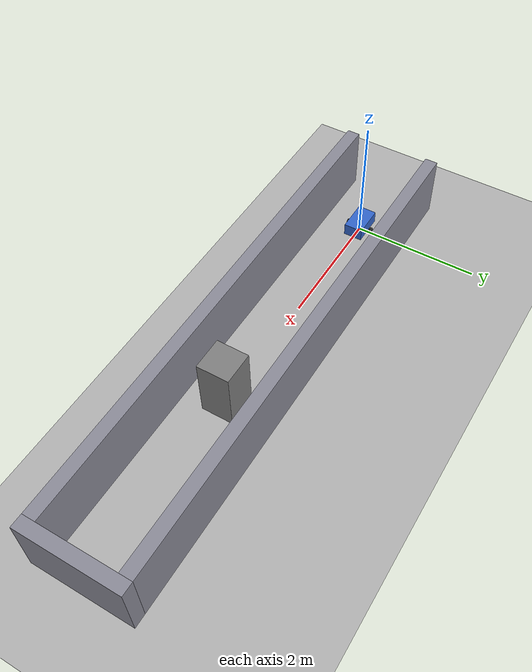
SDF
<?xml version="1.0" ?>
<sdf version="1.9">
  <world name="corridor_world">

    <physics name="1ms" type="ignored">
      <max_step_size>0.001</max_step_size>
      <real_time_factor>1.0</real_time_factor>
    </physics>

    <plugin filename="ignition-gazebo-physics-system"
            name="ignition::gazebo::systems::Physics">
    </plugin>
    <plugin filename="ignition-gazebo-scene-broadcaster-system"
            name="ignition::gazebo::systems::SceneBroadcaster">
    </plugin>
    <plugin filename="ignition-gazebo-sensors-system"
        name="ignition::gazebo::systems::Sensors">
      <render_engine>ogre2</render_engine>
    </plugin>

    <light type="directional" name="sun">
      <cast_shadows>false</cast_shadows>
      <pose>0 0 10 0 0 0</pose>
      <diffuse>0.8 0.8 0.8 1</diffuse>
      <specular>0.2 0.2 0.2 1</specular>
      <direction>-0.5 0.1 -0.9</direction>
    </light>

    <model name="ground_plane">
      <static>true</static>
      <link name="link">
        <collision name="collision">
          <geometry>
            <plane>
              <normal>0 0 1</normal>
              <size>100 100</size>
            </plane>
          </geometry>
        </collision>
        <visual name="visual">
          <geometry>
            <plane>
              <normal>0 0 1</normal>
              <size>100 100</size>
            </plane>
          </geometry>
          <material>
            <ambient>0.7 0.7 0.7 1</ambient>
            <diffuse>0.7 0.7 0.7 1</diffuse>
          </material>
        </visual>
      </link>
    </model>

    <!-- corridor walls: inner faces at y = ±0.6, x from -1 to 7 -->
    <model name="wall_north">
      <static>true</static>
      <pose>3.0 0.7 0.5 0 0 0</pose>
      <link name="link">
        <collision name="collision">
          <geometry><box><size>8.0 0.2 1.0</size></box></geometry>
        </collision>
        <visual name="visual">
          <geometry><box><size>8.0 0.2 1.0</size></box></geometry>
          <material>
            <ambient>0.55 0.55 0.6 1</ambient>
            <diffuse>0.55 0.55 0.6 1</diffuse>
          </material>
        </visual>
      </link>
    </model>

    <model name="wall_south">
      <static>true</static>
      <pose>3.0 -0.7 0.5 0 0 0</pose>
      <link name="link">
        <collision name="collision">
          <geometry><box><size>8.0 0.2 1.0</size></box></geometry>
        </collision>
        <visual name="visual">
          <geometry><box><size>8.0 0.2 1.0</size></box></geometry>
          <material>
            <ambient>0.55 0.55 0.6 1</ambient>
            <diffuse>0.55 0.55 0.6 1</diffuse>
          </material>
        </visual>
      </link>
    </model>

    <!-- end wall: seals the corridor at x = 7.0 (overlaps wall ends) -->
    <model name="end_wall">
      <static>true</static>
      <pose>7.1 0 0.5 0 0 0</pose>
      <link name="link">
        <collision name="collision">
          <geometry><box><size>0.2 1.6 1.0</size></box></geometry>
        </collision>
        <visual name="visual">
          <geometry><box><size>0.2 1.6 1.0</size></box></geometry>
          <material>
            <ambient>0.55 0.55 0.6 1</ambient>
            <diffuse>0.55 0.55 0.6 1</diffuse>
          </material>
        </visual>
      </link>
    </model>

    <!-- the obstacle: 0.5 m box dead ahead, front face at x = 3.75 -->
    <model name="obstacle">
      <static>true</static>
      <pose>4.0 0 0.5 0 0 0</pose>
      <link name="link">
        <collision name="collision">
          <geometry><box><size>0.5 0.5 1.0</size></box></geometry>
        </collision>
        <visual name="visual">
          <geometry><box><size>0.5 0.5 1.0</size></box></geometry>
          <material>
            <ambient>0.5 0.5 0.5 1</ambient>
            <diffuse>0.5 0.5 0.5 1</diffuse>
          </material>
        </visual>
      </link>
    </model>

    <model name="diff_bot">
      <pose>0 0 0 0 0 0</pose>

      <link name="base_link">
        <inertial>
          <pose>0 0 0.12 0 0 0</pose>
          <mass>2.0</mass>
          <inertia>
            <ixx>0.0217</ixx><ixy>0</ixy><ixz>0</ixz>
            <iyy>0.0483</iyy><iyz>0</iyz>
            <izz>0.0567</izz>
          </inertia>
        </inertial>
        <collision name="body">
          <pose>0 0 0.12 0 0 0</pose>
          <geometry><box><size>0.5 0.3 0.2</size></box></geometry>
        </collision>
        <visual name="body">
          <pose>0 0 0.12 0 0 0</pose>
          <geometry><box><size>0.5 0.3 0.2</size></box></geometry>
          <material>
            <ambient>0.2 0.4 0.8 1</ambient>
            <diffuse>0.2 0.4 0.8 1</diffuse>
          </material>
        </visual>
        <!-- caster ball merged into the base: keeps the bot level -->
        <collision name="caster">
          <pose>0.18 0 0.03 0 0 0</pose>
          <geometry><sphere><radius>0.03</radius></sphere></geometry>
        </collision>
        <visual name="caster">
          <pose>0.18 0 0.03 0 0 0</pose>
          <geometry><sphere><radius>0.03</radius></sphere></geometry>
        </visual>
        <sensor name="lidar" type="gpu_lidar">
          <topic>/lidar</topic>
          <update_rate>10</update_rate>
          <lidar>
            <scan>
              <horizontal>
                <samples>360</samples>
                <resolution>1</resolution>
                <min_angle>-3.14159265</min_angle>
                <max_angle>3.14159265</max_angle>
              </horizontal>
            </scan>
            <range>
              <min>0.08</min>
              <max>10.0</max>
              <resolution>0.01</resolution>
            </range>
          </lidar>
          <always_on>true</always_on>
          <visualize>false</visualize>
          <pose>0.15 0 0.23 0 0 0</pose>
        </sensor>
      </link>

      <link name="left_wheel">
        <pose>0 0.2 0.05 0 0 0</pose>
        <inertial>
          <mass>0.2</mass>
          <inertia>
            <ixx>0.00015</ixx><ixy>0</ixy><ixz>0</ixz>
            <iyy>0.00025</iyy><iyz>0</iyz>
            <izz>0.00015</izz>
          </inertia>
        </inertial>
        <collision name="collision">
          <pose>0 0 0 1.5707963 0 0</pose>
          <geometry>
            <cylinder><radius>0.05</radius><length>0.04</length></cylinder>
          </geometry>
        </collision>
        <visual name="visual">
          <pose>0 0 0 1.5707963 0 0</pose>
          <geometry>
            <cylinder><radius>0.05</radius><length>0.04</length></cylinder>
          </geometry>
          <material>
            <ambient>0.1 0.1 0.1 1</ambient>
            <diffuse>0.1 0.1 0.1 1</diffuse>
          </material>
        </visual>
      </link>

      <link name="right_wheel">
        <pose>0 -0.2 0.05 0 0 0</pose>
        <inertial>
          <mass>0.2</mass>
          <inertia>
            <ixx>0.00015</ixx><ixy>0</ixy><ixz>0</ixz>
            <iyy>0.00025</iyy><iyz>0</iyz>
            <izz>0.00015</izz>
          </inertia>
        </inertial>
        <collision name="collision">
          <pose>0 0 0 1.5707963 0 0</pose>
          <geometry>
            <cylinder><radius>0.05</radius><length>0.04</length></cylinder>
          </geometry>
        </collision>
        <visual name="visual">
          <pose>0 0 0 1.5707963 0 0</pose>
          <geometry>
            <cylinder><radius>0.05</radius><length>0.04</length></cylinder>
          </geometry>
          <material>
            <ambient>0.1 0.1 0.1 1</ambient>
            <diffuse>0.1 0.1 0.1 1</diffuse>
          </material>
        </visual>
      </link>

      <joint name="left_wheel_joint" type="revolute">
        <parent>base_link</parent>
        <child>left_wheel</child>
        <pose>0 0.2 -0.07 0 0 0</pose>
        <axis>
          <xyz>0 1 0</xyz>
          <limit><lower>-1e16</lower><upper>1e16</upper></limit>
        </axis>
      </joint>

      <joint name="right_wheel_joint" type="revolute">
        <parent>base_link</parent>
        <child>right_wheel</child>
        <pose>0 -0.2 -0.07 0 0 0</pose>
        <axis>
          <xyz>0 1 0</xyz>
          <limit><lower>-1e16</lower><upper>1e16</upper></limit>
        </axis>
      </joint>

      <plugin filename="ignition-gazebo-diff-drive-system"
              name="ignition::gazebo::systems::DiffDrive">
        <left_joint>left_wheel_joint</left_joint>
        <right_joint>right_wheel_joint</right_joint>
        <wheel_separation>0.4</wheel_separation>
        <wheel_radius>0.05</wheel_radius>
        <odom_publish_frequency>50</odom_publish_frequency>
        <topic>/cmd_vel</topic>
        <odom_topic>/odom</odom_topic>
        <frame_id>odom</frame_id>
        <child_frame_id>base_link</child_frame_id>
      </plugin>
    </model>

  </world>
</sdf>
